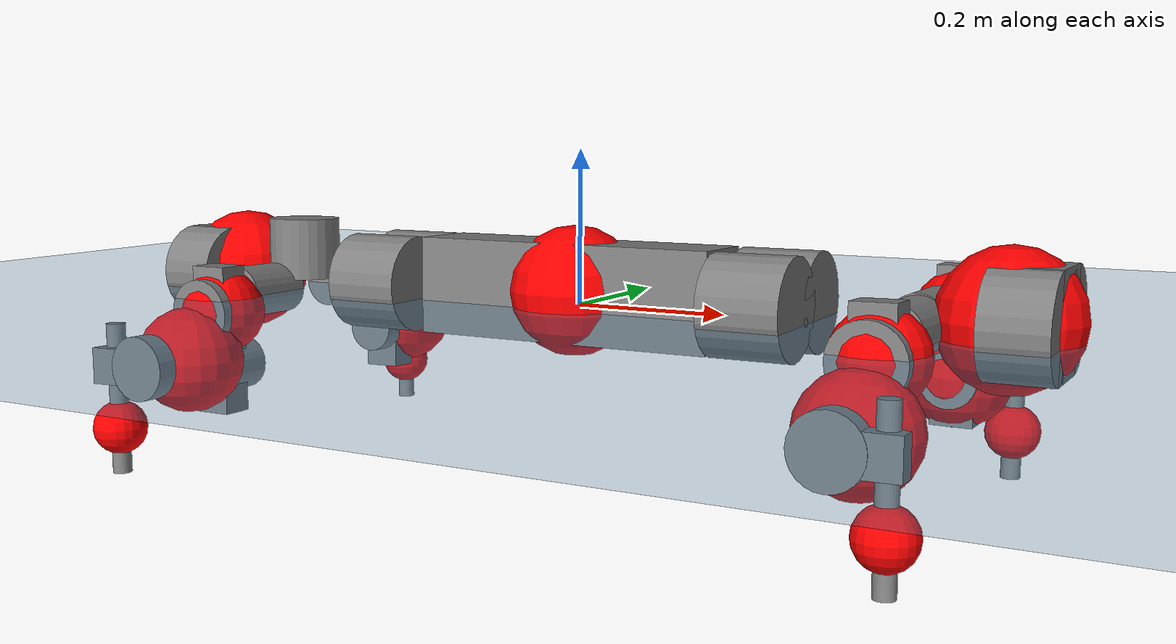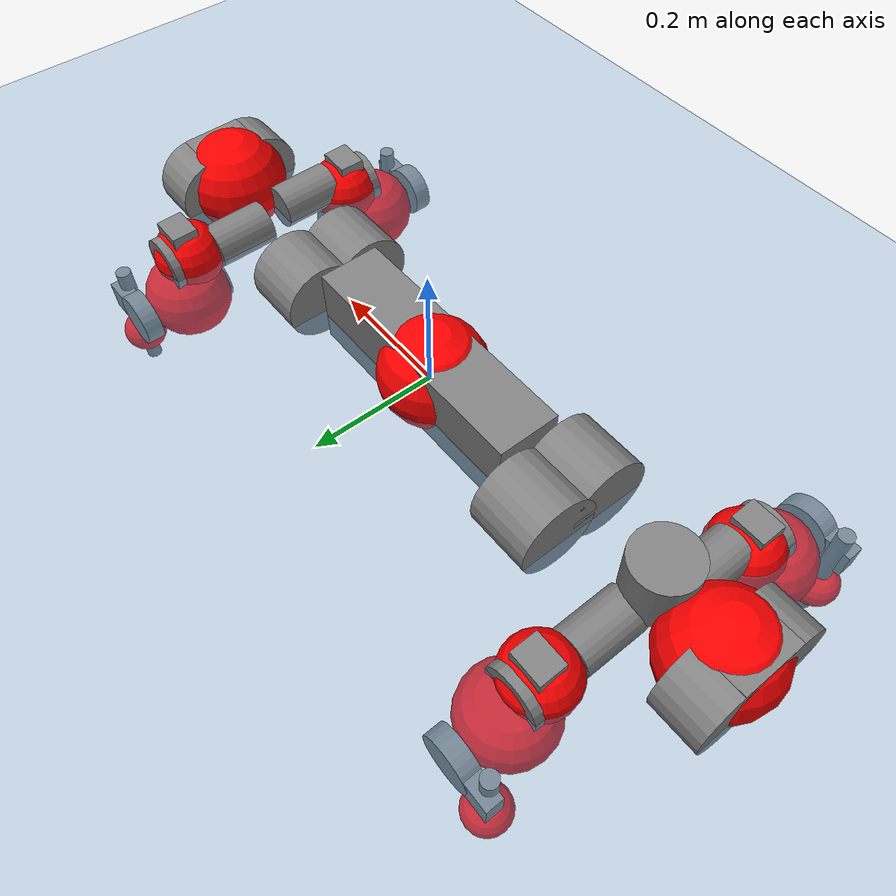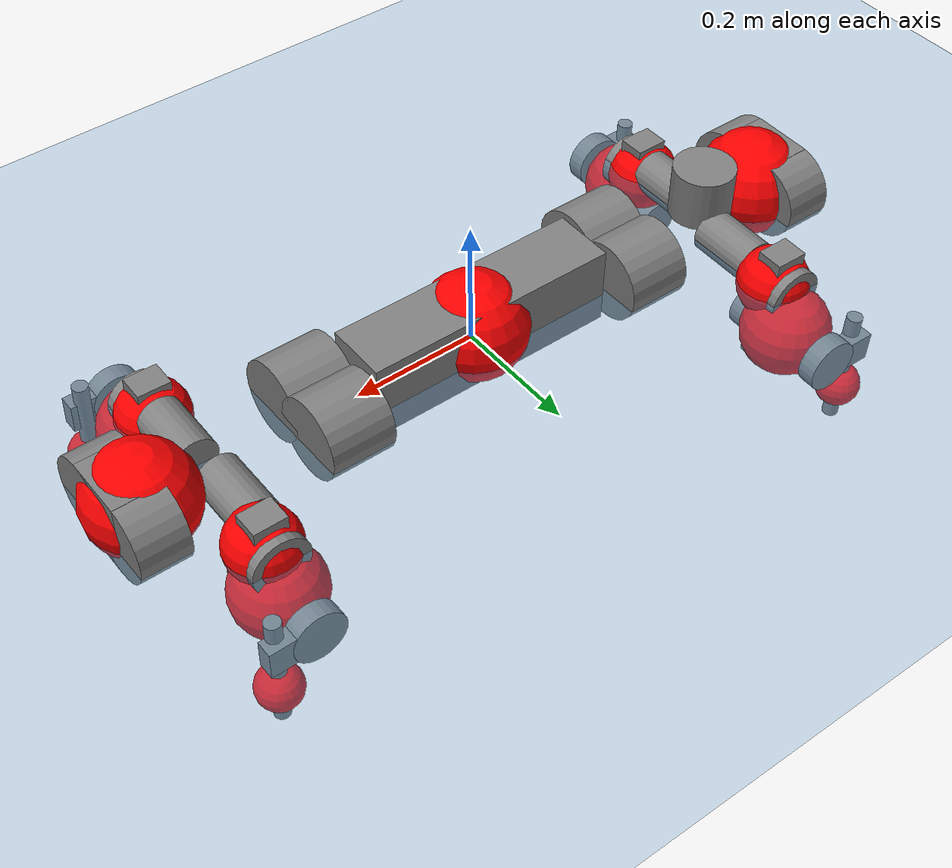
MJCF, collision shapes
<mujoco model="anymal_c">
  <compiler angle="radian" assetdir="assets" balanceinertia="true" inertiafromgeom="false"/>

  <option timestep="0.005" density="1.2" viscosity="2e-05"/>

  <size nkey="1"/>

  <visual>
    <quality shadowsize="8192"/>
    <map shadowclip="0.5"/>
  </visual>

  <default>
    <default class="/">
      <material specular="0" shininess="0.25"/>
      <geom contype="0" conaffinity="0" group="1" solref="-1000 -80"/>
      <site size="0.01 0.005 0.005" group="5"/>
      <general forcelimited="true" forcerange="-80 80" biastype="affine" gainprm="80" biasprm="0 -80 -2"/>
      <default class="anymal_c">
        <joint armature="0.01" damping="0.01" frictionloss="0.1"/>
        <default class="visual">
          <geom type="mesh" group="2"/>
          <default class="visual_zflip"/>
        </default>
        <default class="collision">
          <geom type="cylinder" group="3"/>
          <default class="foot">
            <geom size="0.03 0 0" type="sphere" condim="6" priority="1" friction="0.8 0.02 0.01" solimp="0.015 1 0.03"/>
          </default>
        </default>
      </default>
      <default class="reward_collision_sphere">
        <geom group="5" rgba="1 0 0 1"/>
      </default>
    </default>
  </default>

  <asset>
    <texture type="skybox" colorspace="auto" name="//unnamed_texture_0" builtin="gradient" rgb1="0.95 0.95 0.95" rgb2="0.95 0.95 0.95" width="100" height="600"/>
    <texture type="2d" colorspace="auto" name="texplane" builtin="checker" rgb1="0.345 0.575 0.748" rgb2="0.345 0.575 0.748" markrgb="1 1 1" width="512" height="512"/>
    <texture type="2d" colorspace="linear" name="base" file="base.png"/>
    <texture type="2d" colorspace="linear" name="top_shell" file="top_shell.png"/>
    <texture type="2d" colorspace="linear" name="bottom_shell" file="bottom_shell.png"/>
    <texture type="2d" colorspace="linear" name="remote" file="remote.png"/>
    <texture type="2d" colorspace="linear" name="hatch" file="hatch.png"/>
    <texture type="2d" colorspace="linear" name="handle" file="handle.png"/>
    <texture type="2d" colorspace="linear" name="face" file="face.png"/>
    <texture type="2d" colorspace="linear" name="battery" file="battery.png"/>
    <texture type="2d" colorspace="linear" name="lidar_cage" file="lidar_cage.png"/>
    <texture type="2d" colorspace="linear" name="depth_camera" file="depth_camera.png"/>
    <texture type="2d" colorspace="linear" name="wide_angle_camera" file="wide_angle_camera.png"/>
    <texture type="2d" colorspace="linear" name="lidar" file="lidar.png"/>
    <texture type="2d" colorspace="linear" name="drive" file="drive.png"/>
    <texture type="2d" colorspace="linear" name="hip_l" file="hip_l.png"/>
    <texture type="2d" colorspace="linear" name="shank_l" file="shank_l.png"/>
    <texture type="2d" colorspace="linear" name="foot" file="foot.png"/>
    <texture type="2d" colorspace="linear" name="thigh" file="thigh.png"/>
    <texture type="2d" colorspace="linear" name="shank_r" file="shank_r.png"/>
    <texture type="2d" colorspace="linear" name="hip_r" file="hip_r.png"/>
    <material name="MatPlane" class="/" texture="texplane" texuniform="true" texrepeat="2 2" specular="0.9" shininess="0.5"/>
    <material name="black_plastic" class="/" rgba="0.007 0.007 0.007 1"/>
    <material name="green" class="/" rgba="0.052 0.178 0.033 1"/>
    <material name="red" class="/" rgba="0.178 0.006 0.005 1"/>
    <material name="yellow" class="/" rgba="0.178 0.119 0.006 1"/>
    <material name="lwl" class="/" rgba="0.8 0.8 0.8 1"/>
    <material name="base" class="/" texture="base"/>
    <material name="top_shell" class="/" texture="top_shell"/>
    <material name="bottom_shell" class="/" texture="bottom_shell"/>
    <material name="hip_l" class="/" texture="hip_l"/>
    <material name="thigh" class="/" texture="thigh"/>
    <material name="shank_l" class="/" texture="shank_l"/>
    <material name="foot" class="/" texture="foot"/>
    <material name="hip_r" class="/" texture="hip_r"/>
    <material name="shank" class="/" texture="shank_r"/>
    <material name="hatch" class="/" texture="hatch"/>
    <material name="remote" class="/" texture="remote"/>
    <material name="handle" class="/" texture="handle"/>
    <material name="face" class="/" texture="face"/>
    <material name="depth_camera" class="/" texture="depth_camera"/>
    <material name="wide_angle_camera" class="/" texture="wide_angle_camera"/>
    <material name="battery" class="/" texture="battery"/>
    <material name="lidar_cage" class="/" texture="lidar_cage"/>
    <material name="lidar" class="/" texture="lidar"/>
    <material name="drive" class="/" texture="drive"/>
    <mesh name="base_0" class="/" file="base_0.obj"/>
    <mesh name="base_1" class="/" file="base_1.obj"/>
    <mesh name="base_2" class="/" file="base_2.obj"/>
    <mesh name="base_3" class="/" file="base_3.obj"/>
    <mesh name="base_4" class="/" file="base_4.obj"/>
    <mesh name="base_5" class="/" file="base_5.obj"/>
    <mesh name="top_shell" class="/" file="top_shell.obj"/>
    <mesh name="bottom_shell" class="/" file="bottom_shell.obj"/>
    <mesh name="remote" class="/" file="remote.obj"/>
    <mesh name="handle" class="/" file="handle.obj"/>
    <mesh name="face" class="/" file="face.obj"/>
    <mesh name="wide_angle_camera" class="/" file="wide_angle_camera.obj"/>
    <mesh name="depth_camera" class="/" file="depth_camera.obj"/>
    <mesh name="battery" class="/" file="battery.obj"/>
    <mesh name="lidar_cage" class="/" file="lidar_cage.obj"/>
    <mesh name="lidar" class="/" file="lidar.obj"/>
    <mesh name="drive" class="/" file="drive.obj"/>
    <mesh name="hip_l" class="/" file="hip_l.obj"/>
    <mesh name="thigh" class="/" file="thigh.obj"/>
    <mesh name="shank_l" class="/" file="shank_l.obj"/>
    <mesh name="foot" class="/" file="foot.obj"/>
    <mesh name="hip_r" class="/" file="hip_r.obj"/>
    <mesh name="hatch" class="/" file="hatch.obj"/>
    <mesh name="shank_r" class="/" file="shank_r.obj"/>
  </asset>

  <worldbody>
    <geom name="floor" class="/" size="100 100 0.125" type="plane" group="0" material="MatPlane"/>
    <light name="toplight_shadow" class="/" pos="0 0 5" dir="0.0990148 0.0990148 -0.990148" type="directional" ambient="0.04 0.04 0.04" diffuse="0.55 0.55 0.55" specular="0.12 0.12 0.12"/>
    <light name="toplight_fill" class="/" pos="0 0 5" dir="0.0990148 0.0990148 -0.990148" type="directional" castshadow="false" ambient="0.04 0.04 0.04" diffuse="0.3 0.3 0.3" specular="0.08 0.08 0.08"/>
    <body name="trunk" childclass="anymal_c" pos="-0.0062276 -0.00278805 0.0186425" quat="0.999961 -0.00876877 -0.000660084 -0.000547395">
      <inertial pos="-0.00234775 -0.0157802 0.0184972" quat="0.459158 0.571051 0.480198 0.482168" mass="6.04045" diaginertia="1.40433 0.0520649 0.000205592"/>
      <joint name="//unnamed_joint_0" type="free" armature="0" damping="0" frictionloss="0"/>
      <geom name="//unnamed_geom_1" class="visual" material="green" mesh="base_0"/>
      <geom name="//unnamed_geom_2" class="visual" material="yellow" mesh="base_1"/>
      <geom name="//unnamed_geom_3" class="visual" material="red" mesh="base_2"/>
      <geom name="//unnamed_geom_4" class="visual" material="black_plastic" mesh="base_3"/>
      <geom name="//unnamed_geom_5" class="visual" material="lwl" mesh="base_4"/>
      <geom name="//unnamed_geom_6" class="visual" material="base" mesh="base_5"/>
      <geom name="trunk_1" class="collision" size="0.204581 0.0493816 0.0634907" type="box"/>
      <geom name="trunk_2" class="collision" size="0.0634907 0.0511452" pos="0.265163 0.0442161 0" quat="0.707107 0 0.707107 0"/>
      <geom name="trunk_3" class="collision" size="0.0634907 0.0511452" pos="-0.265163 0.0442161 0" quat="0.707107 0 0.707107 0"/>
      <geom name="trunk_4" class="collision" size="0.0634907 0.0511452" pos="0.265163 -0.0442161 0" quat="0.707107 0 0.707107 0"/>
      <geom name="trunk_5" class="collision" size="0.0634907 0.0511452" pos="-0.265163 -0.0442161 0" quat="0.707107 0 0.707107 0"/>
      <geom name="//unnamed_geom_12" class="visual" material="top_shell" mesh="top_shell"/>
      <geom name="//unnamed_geom_13" class="visual" material="bottom_shell" mesh="bottom_shell"/>
      <geom name="//unnamed_geom_14" class="visual" material="remote" mesh="remote"/>
      <geom name="//unnamed_geom_15" class="visual" material="handle" mesh="handle"/>
      <geom name="//unnamed_geom_16" class="visual" pos="0.505333 0 0" quat="1 0 0 0" material="face" mesh="face"/>
      <geom name="trunk_6" class="collision" size="0.0387998 0.0493816 0.0634907" pos="0.572386 0 0" type="box"/>
      <geom name="//unnamed_geom_18" class="collision" size="0.0634907 0.0387998" pos="0.572386 0.0442161 0" quat="0.707107 0 0.707107 0"/>
      <geom name="//unnamed_geom_19" class="collision" size="0.0634907 0.0387998" pos="0.572386 -0.0442161 0" quat="0.707107 0 0.707107 0"/>
      <geom name="//unnamed_geom_20" class="visual" pos="0.562776 0 -0.000507069" quat="0.965926 0 0.258819 0" material="depth_camera" mesh="depth_camera"/>
      <geom name="//unnamed_geom_21" class="visual" pos="0.625418 0 0.0039754" material="wide_angle_camera" mesh="wide_angle_camera"/>
      <geom name="//unnamed_geom_22" class="visual_zflip" pos="-0.505333 0 0" quat="0 0 0 1" material="face" mesh="face"/>
      <geom name="trunk_7" class="collision" size="0.0387998 0.0493816 0.0634907" pos="-0.572386 0 0" quat="0 0 0 1" type="box"/>
      <geom name="//unnamed_geom_24" class="collision" size="0.0634907 0.0387998" pos="-0.572386 -0.0442161 0" quat="0 -0.707107 0 0.707107"/>
      <geom name="//unnamed_geom_25" class="collision" size="0.0634907 0.0387998" pos="-0.572386 0.0442161 0" quat="0 -0.707107 0 0.707107"/>
      <geom name="//unnamed_geom_26" class="visual" pos="-0.562776 0 -0.000507069" quat="0 -0.258819 0 0.965926" material="depth_camera" mesh="depth_camera"/>
      <geom name="//unnamed_geom_27" class="visual_zflip" pos="-0.625418 0 0.0039754" quat="0 0 0 1" material="wide_angle_camera" mesh="wide_angle_camera"/>
      <geom name="//unnamed_geom_28" class="visual" material="battery" mesh="battery"/>
      <geom name="//unnamed_geom_29" class="visual" pos="0 0.0405481 0.0149617" quat="0.683013 -0.183013 0.183013 0.683013" material="depth_camera" mesh="depth_camera"/>
      <geom name="//unnamed_geom_30" class="visual" pos="0 -0.0405481 0.0149617" quat="0.683013 0.183013 0.183013 -0.683013" material="depth_camera" mesh="depth_camera"/>
      <geom name="//unnamed_geom_31" class="visual" pos="-0.443766 0 0.0195185" quat="1 0 0 0" material="lidar_cage" mesh="lidar_cage"/>
      <geom name="trunk_8" class="collision" size="0.0493816 0.0423271" pos="-0.443766 0 0.0354519"/>
      <geom name="//unnamed_geom_33" class="visual" pos="-0.443766 -0.000230805 0.0377623" quat="0.707107 0 0 -0.707107" material="lidar" mesh="lidar"/>
      <geom name="//unnamed_geom_34" class="visual" pos="0.36562 0.0655624 6.31528e-09" quat="0.258819 0.965926 0 0" material="drive" mesh="drive"/>
      <geom name="//unnamed_geom_35" class="visual" pos="0.36562 -0.0655624 -6.31528e-09" quat="0.258819 -0.965926 0 0" material="drive" mesh="drive"/>
      <geom name="//unnamed_geom_36" class="visual" pos="-0.36562 0.0655624 -6.31528e-09" quat="0 0 0.965926 -0.258819" material="drive" mesh="drive"/>
      <geom name="//unnamed_geom_37" class="visual" pos="-0.36562 -0.0655624 6.31528e-09" quat="0 0 -0.965926 -0.258819" material="drive" mesh="drive"/>
      <geom name="//unnamed_geom_38" class="visual" pos="0.14142 0 0.0193857" quat="1 0 0 0" material="hatch" mesh="hatch"/>
      <geom name="//unnamed_geom_39" class="reward_collision_sphere" size="0.0846542"/>
      <geom name="//unnamed_geom_40" class="reward_collision_sphere" size="0.0846542" pos="0.548612 0 0"/>
      <geom name="//unnamed_geom_41" class="reward_collision_sphere" size="0.0846542" pos="-0.548612 0 0"/>
      <site name="imu" pos="0.26651 -0.0581832 0.0883096" size="0.00705452"/>
      <camera name="track" pos="0 -1.26332 0" quat="0.707107 0.707107 0 0" mode="trackcom"/>
      <camera name="ego_camera" pos="0.548612 0 -0.0106223" quat="-0.5 -0.5 0.5 0.5"/>
      <body name="LF_HIP" pos="0.368109 0.0560471 -0.010333" quat="0.259794 0.965662 -0.000127226 -0.00215606">
        <inertial pos="0.0861633 -0.0120455 0.0159801" quat="-0.210837 0.724517 -0.123291 0.644533" mass="1.15268" diaginertia="0.0149167 0.000635436 5.09054e-06"/>
        <joint name="LF_HAA" pos="0 0 0" axis="0.996636 -0.076696 0.0288968" stiffness="0.07259" range="-0.656993 0.247788" armature="0.00689058" damping="0.0815094" frictionloss="0.028122"/>
        <geom name="//unnamed_geom_42" class="visual" pos="0 0.0003715 -6.10185e-05" quat="0.258819 -0.965926 0 0" material="hip_l" mesh="hip_l"/>
        <geom name="//unnamed_geom_43" class="visual" pos="0.0730264 -0.0806219 -0.0438392" quat="0.183013 -0.683013 0.683013 0.183013" material="drive" mesh="drive"/>
        <geom name="//unnamed_geom_44" class="collision" size="0.0352726 0.0493816" pos="0.0730264 -0.00755451 -0.00183368" quat="-0.353553 -0.612372 0.612372 -0.353553"/>
        <body name="LF_THIGH" pos="0.0885511 -0.056812 -0.026146" quat="0.182763 -0.683043 0.683403 0.181687">
          <inertial pos="0.0375632 -0.00296148 -0.0604379" quat="0.988497 -0.0317314 -0.0838415 0.121805" mass="1.17041" diaginertia="0.0889572 0.00360079 7.96547e-06"/>
          <joint name="LF_HFE" pos="0 0 0" axis="0.999925 -0.00617648 0.0106135" stiffness="0.0128826" range="-2.89349 3.13108" armature="0.0114326" damping="0" frictionloss="0.072265"/>
          <geom name="//unnamed_geom_45" class="visual" pos="0.0116885 1.84184e-05 0" quat="0.707107 0 0 -0.707107" material="thigh" mesh="thigh"/>
          <geom name="//unnamed_geom_46" class="collision" size="0.0458544 0.0282181" pos="0.0487655 0 0" quat="0.5 0.5 -0.5 -0.5"/>
          <geom name="//unnamed_geom_47" class="collision" size="0.0264544 0.0211636 0.0996902" pos="0.0365742 0 -0.037527" quat="0.707107 0 0 -0.707107" type="box"/>
          <geom name="//unnamed_geom_48" class="visual" pos="0.12228 0 -0.0756839" quat="1 0 0 0" material="drive" mesh="drive"/>
          <geom name="//unnamed_geom_49" class="collision" size="0.0352726 0.0493816" pos="0.0369399 0 -0.0756839" quat="0.707107 0 0.707107 0"/>
          <geom name="//unnamed_geom_50" class="reward_collision_sphere" size="0.0564361" pos="0.0304785 0 0"/>
          <body name="LF_SHANK" pos="0.113813 0.00344492 -0.0735203" quat="1 9.21079e-05 -0.000191981 -6.62767e-05">
            <inertial pos="0.0264628 -0.0207331 -0.023018" quat="0.989989 -0.138278 0.00140024 -0.028256" mass="0.209183" diaginertia="0.0350893 0.000908941 1.61268e-06"/>
            <joint name="LF_KFE" pos="0 0 0" axis="0.999877 0.00911802 0.0127398" range="-2.74904 2.88635" armature="0.010766" damping="0.0453043" frictionloss="0.0033795"/>
            <geom name="//unnamed_geom_51" class="visual" pos="0.00381138 0.0203225 0" quat="0.707107 0 0 -0.707107" material="shank_l" mesh="shank_l"/>
            <geom name="LF_kfe_act" class="collision" size="0.0423271 0.014109" pos="0.0243828 0 0" quat="0.5 0.5 -0.5 -0.5"/>
            <geom name="//unnamed_geom_53" class="collision" size="0.0405628 0.023809 0.0134036" pos="0.0243828 -0.0363197 0" quat="0.5 0.5 -0.5 -0.5" type="box"/>
            <geom name="//unnamed_geom_54" class="visual" pos="0.0159088 -0.0490053 -0.0897505" quat="0.382683 0 0 -0.92388" material="foot" mesh="foot"/>
            <geom name="LF_calf" class="collision" size="0.0123454 0.0996465" pos="0.0159098 -0.0555544 -0.0448753" quat="0.707107 0 0 -0.707107"/>
            <geom name="LF_foot" class="foot" size="0.0310787" pos="0.0159098 -0.0555544 -0.0837755" quat="0.707107 0 0 -0.707107"/>
            <geom name="//unnamed_geom_57" class="reward_collision_sphere" size="0.0705452" pos="-0.0609569 0 0"/>
            <geom name="//unnamed_geom_58" class="reward_collision_sphere" size="0.0352726" pos="0.0159098 -0.0555544 -0.0837755"/>
            <site name="LF_foot" class="foot" pos="0.0159098 -0.0555544 -0.0837755" quat="0.707107 0 0 -0.707107" size="0.00705452"/>
          </body>
        </body>
      </body>
      <body name="RF_HIP" pos="0.378008 -0.0632735 -0.00846315" quat="0.252549 -0.967559 0.00411373 -0.00564864">
        <inertial pos="0.0795115 0.0095575 -0.00103107" quat="0.097696 0.616573 0.141887 0.76822" mass="0.831695" diaginertia="0.0160241 0.000577574 4.4519e-06"/>
        <joint name="RF_HAA" pos="0 0 0" axis="0.998129 -0.0294382 0.0535816" stiffness="0.0797648" range="-0.119585 0.960734" armature="0.00451509" damping="0.0754604" frictionloss="0.0230446"/>
        <geom name="//unnamed_geom_59" class="visual" pos="0 -0.000371497 -6.10183e-05" quat="0.258819 0.965926 0 0" material="hip_r" mesh="hip_r"/>
        <geom name="//unnamed_geom_60" class="visual" pos="0.0730264 0.0806219 -0.0438392" quat="0.183013 0.683013 0.683013 -0.183013" material="drive" mesh="drive"/>
        <geom name="//unnamed_geom_61" class="collision" size="0.0352726 0.0493816" pos="0.0730264 0.00755451 -0.00183368" quat="-0.353553 0.612372 0.612372 0.353553"/>
        <body name="RF_THIGH" pos="0.0695423 0.0585716 -0.00606793" quat="0.178309 0.682056 0.684623 -0.185197">
          <inertial pos="0.0489988 -0.00338439 -0.0558671" quat="0.993081 0.0354469 -0.0643296 0.0916242" mass="0.894715" diaginertia="0.0787375 0.00367092 4.87653e-06"/>
          <joint name="RF_HFE" pos="0 0 0" axis="0.999986 -0.00395372 0.0033844" range="-3.15499 3.39083" armature="0.0114784" damping="0.0995448" frictionloss="0.124643"/>
          <geom name="//unnamed_geom_62" class="visual" pos="0.0116885 1.84184e-05 0" quat="0.707107 0 0 -0.707107" material="thigh" mesh="thigh"/>
          <geom name="//unnamed_geom_63" class="collision" size="0.0458544 0.0282181" pos="0.0487655 0 0" quat="0.5 0.5 0.5 0.5"/>
          <geom name="//unnamed_geom_64" class="collision" size="0.0264544 0.0211636 0.0996902" pos="0.0365742 0 -0.037527" quat="0.707107 0 0 0.707107" type="box"/>
          <geom name="//unnamed_geom_65" class="visual" pos="0.12228 0 -0.0756839" quat="1 0 0 0" material="drive" mesh="drive"/>
          <geom name="//unnamed_geom_66" class="collision" size="0.0352726 0.0493816" pos="0.0369399 0 -0.0756839" quat="0.707107 0 0.707107 0"/>
          <geom name="//unnamed_geom_67" class="reward_collision_sphere" size="0.0564361" pos="0.0304785 0 0"/>
          <body name="RF_SHANK" pos="0.140643 -0.00522382 -0.0735795" quat="0.999993 -0.00218441 0.00240962 0.00200904">
            <inertial pos="0.0151047 0.0559733 -0.0368225" quat="0.980655 0.182142 0.0683105 0.0217775" mass="0.272977" diaginertia="0.03538 0.000895818 2.09908e-06"/>
            <joint name="RF_KFE" pos="0 0 0" axis="0.999989 0.00055799 -0.00465359" stiffness="0.0392309" range="-3.05772 3.2641" armature="0.00884541" damping="0.0738699" frictionloss="0.111353"/>
            <geom name="//unnamed_geom_68" class="visual" pos="0.00381136 -0.0203224 0" quat="0.707107 0 0 0.707107" material="shank" mesh="shank_r"/>
            <geom name="RF_kfe_act" class="collision" size="0.0423271 0.014109" pos="0.0243828 0 0" quat="0.5 0.5 0.5 0.5"/>
            <geom name="//unnamed_geom_70" class="collision" size="0.0405628 0.023809 0.0134036" pos="0.0243828 0.0363197 0" quat="0.5 0.5 0.5 0.5" type="box"/>
            <geom name="//unnamed_geom_71" class="visual" pos="0.0159107 0.0490053 -0.0897505" quat="0.382683 0 0 0.92388" material="foot" mesh="foot"/>
            <geom name="RF_calf" class="collision" size="0.0123454 0.0996465" pos="0.0159098 0.0555544 -0.0448753" quat="0.707107 0 0 0.707107"/>
            <geom name="RF_foot" class="foot" size="0.034678" pos="0.0159098 0.0555544 -0.0837755" quat="0.707107 0 0 0.707107"/>
            <geom name="//unnamed_geom_74" class="reward_collision_sphere" size="0.0705452" pos="-0.0609569 0 0"/>
            <geom name="//unnamed_geom_75" class="reward_collision_sphere" size="0.0352726" pos="0.0159098 0.0555544 -0.0837755"/>
            <site name="RF_foot" class="foot" pos="0.0159098 0.0555544 -0.0837755" quat="0.707107 0 0 0.707107" size="0.00705452"/>
          </body>
        </body>
      </body>
      <body name="LH_HIP" pos="-0.361863 0.0796242 -0.0141811" quat="0.000825689 0.00117695 0.964784 -0.26304">
        <inertial pos="0.0783629 0.0267575 0.0165135" quat="0.123594 0.678205 0.177625 0.70229" mass="1.21374" diaginertia="0.0208952 0.00049827 5.97944e-06"/>
        <joint name="LH_HAA" pos="0 0 0" axis="0.996622 0.0483889 0.0663495" range="-0.159047 0.372216" armature="0.0014907" damping="0" frictionloss="0.0785739"/>
        <geom name="//unnamed_geom_76" class="visual" pos="0 -0.000371497 -6.10183e-05" quat="-0.258819 -0.965926 0 0" material="hip_r" mesh="hip_r"/>
        <geom name="//unnamed_geom_77" class="visual" pos="0.0730264 0.0806219 -0.0438392" quat="0.183013 0.683013 0.683013 -0.183013" material="drive" mesh="drive"/>
        <geom name="//unnamed_geom_78" class="collision" size="0.0352726 0.0493816" pos="0.0730264 0.00755451 -0.00183368" quat="-0.353553 0.612372 0.612372 0.353553"/>
        <body name="LH_THIGH" pos="0.0692868 0.0622452 -0.0294055" quat="0.183662 0.683002 0.684696 -0.175978">
          <inertial pos="0.0181556 0.014575 -0.0459986" quat="0.992475 -0.00486983 -0.0826998 0.0901739" mass="0.85683" diaginertia="0.0477041 0.00207353 3.42624e-06"/>
          <joint name="LH_HFE" pos="0 0 0" axis="0.995358 0.00791091 0.0959137" range="-2.87201 3.04545" armature="0.00460244" damping="0.103577" frictionloss="0.0313945"/>
          <geom name="//unnamed_geom_79" class="visual" pos="0.0116885 1.84184e-05 0" quat="0.707107 0 0 -0.707107" material="thigh" mesh="thigh"/>
          <geom name="//unnamed_geom_80" class="collision" size="0.0458544 0.0282181" pos="0.0487655 0 0" quat="0.5 0.5 -0.5 -0.5"/>
          <geom name="//unnamed_geom_81" class="collision" size="0.0264544 0.0211636 0.0996902" pos="0.0365742 0 -0.037527" quat="0.707107 0 0 -0.707107" type="box"/>
          <geom name="//unnamed_geom_82" class="visual" pos="0.12228 0 -0.0756839" quat="1 0 0 0" material="drive" mesh="drive"/>
          <geom name="//unnamed_geom_83" class="collision" size="0.0352726 0.0493816" pos="0.0369399 0 -0.0756839" quat="0.707107 0 0.707107 0"/>
          <geom name="//unnamed_geom_84" class="reward_collision_sphere" size="0.0564361" pos="0.0304785 0 0"/>
          <body name="LH_SHANK" pos="0.135188 -0.00338464 -0.0624918" quat="0.999971 -0.00755128 -0.000148959 -0.00105494">
            <inertial pos="0.0249473 0.0246414 -0.00251467" quat="0.981811 0.169203 0.0441609 0.0739367" mass="0.229335" diaginertia="0.0314631 0.00125723 1.50768e-06"/>
            <joint name="LH_KFE" pos="0 0 0" axis="0.999898 -0.0139011 0.00326188" stiffness="0.0349597" range="-3.27956 3.53522" armature="0.00146339" damping="0.0963857" frictionloss="0.0786858"/>
            <geom name="//unnamed_geom_85" class="visual" pos="0.00381136 -0.0203224 0" quat="-0.707107 0 0 -0.707107" material="shank" mesh="shank_r"/>
            <geom name="LH_kfe_act" class="collision" size="0.0423271 0.014109" pos="0.0243828 0 0" quat="0.5 0.5 -0.5 -0.5"/>
            <geom name="//unnamed_geom_87" class="collision" size="0.0405628 0.023809 0.0134036" pos="0.0243828 0.0363197 0" quat="0.5 0.5 -0.5 -0.5" type="box"/>
            <geom name="//unnamed_geom_88" class="visual" pos="0.0159107 0.0490053 -0.0897505" quat="-0.382683 0 0 -0.92388" material="foot" mesh="foot"/>
            <geom name="LH_calf" class="collision" size="0.0123454 0.0996465" pos="0.0159098 0.0555544 -0.0448753" quat="0.707107 0 0 -0.707107"/>
            <geom name="LH_foot" class="foot" size="0.0131366" pos="0.0159098 0.0555544 -0.0837755" quat="0.707107 0 0 -0.707107"/>
            <geom name="//unnamed_geom_91" class="reward_collision_sphere" size="0.0705452" pos="-0.0609569 0 0"/>
            <geom name="//unnamed_geom_92" class="reward_collision_sphere" size="0.0352726" pos="0.0159098 0.0555544 -0.0837755"/>
            <site name="LH_foot" class="foot" pos="0.0159098 0.0555544 -0.0837755" quat="0.707107 0 0 -0.707107" size="0.00705452"/>
          </body>
        </body>
      </body>
      <body name="RH_HIP" pos="-0.385222 -0.0710907 -0.0168548" quat="0.000115088 0.000125169 -0.965892 -0.258945">
        <inertial pos="0.0846746 0.00323436 -0.00300404" quat="-0.101985 0.738024 -0.200085 0.636307" mass="0.934772" diaginertia="0.00938659 0.000361162 2.83018e-06"/>
        <joint name="RH_HAA" pos="0 0 0" axis="0.995131 -0.0591455 -0.0788383" range="-0.495048 0.478428" armature="0.00685631" damping="0.00647704" frictionloss="0.00171556"/>
        <geom name="//unnamed_geom_93" class="visual" pos="0 0.0003715 -6.10185e-05" quat="-0.258819 0.965926 0 0" material="hip_l" mesh="hip_l"/>
        <geom name="//unnamed_geom_94" class="visual" pos="0.0730264 -0.0806219 -0.0438392" quat="-0.183013 0.683013 -0.683013 -0.183013" material="drive" mesh="drive"/>
        <geom name="//unnamed_geom_95" class="collision" size="0.0352726 0.0493816" pos="0.0730264 -0.00755451 -0.00183368" quat="0.353553 0.612372 -0.612372 0.353553"/>
        <body name="RH_THIGH" pos="0.079131 -0.0548928 -0.00302211" quat="-0.181744 0.683557 -0.683536 -0.180271">
          <inertial pos="0.0268623 0.0121046 -0.0483052" quat="0.985007 0.00474176 -0.147495 0.0893478" mass="1.49093" diaginertia="0.072239 0.00348587 5.54101e-06"/>
          <joint name="RH_HFE" pos="0 0 0" axis="0.998514 -0.0544561 0.00225607" range="-3.2019 3.44202" armature="0.00669819" damping="0.0506936" frictionloss="0.1006"/>
          <geom name="//unnamed_geom_96" class="visual" pos="0.0116885 1.84184e-05 0" quat="0.707107 0 0 -0.707107" material="thigh" mesh="thigh"/>
          <geom name="//unnamed_geom_97" class="collision" size="0.0458544 0.0282181" pos="0.0487655 0 0" quat="0.5 0.5 0.5 0.5"/>
          <geom name="//unnamed_geom_98" class="collision" size="0.0264544 0.0211636 0.0996902" pos="0.0365742 0 -0.037527" quat="0.707107 0 0 0.707107" type="box"/>
          <geom name="//unnamed_geom_99" class="visual" pos="0.12228 0 -0.0756839" quat="1 0 0 0" material="drive" mesh="drive"/>
          <geom name="//unnamed_geom_100" class="collision" size="0.0352726 0.0493816" pos="0.0369399 0 -0.0756839" quat="0.707107 0 0.707107 0"/>
          <geom name="//unnamed_geom_101" class="reward_collision_sphere" size="0.0564361" pos="0.0304785 0 0"/>
          <body name="RH_SHANK" pos="0.140032 -0.0149273 -0.0610928" quat="0.999951 0.00904717 -0.00361464 0.00174848">
            <inertial pos="-0.00269585 -0.0371335 -0.0237097" quat="0.986143 -0.133592 -0.0785653 -0.0591874" mass="0.189136" diaginertia="0.0249058 0.000661391 1.51223e-06"/>
            <joint name="RH_KFE" pos="0 0 0" axis="0.995429 -0.061096 0.0734093" stiffness="0.0887356" range="-3.47055 3.30674" armature="0.00604285" damping="0.09327" frictionloss="0.101119"/>
            <geom name="//unnamed_geom_102" class="visual" pos="0.00381138 0.0203225 0" quat="0.707107 0 0 -0.707107" material="shank_l" mesh="shank_l"/>
            <geom name="RH_kfe_act" class="collision" size="0.0423271 0.014109" pos="0.0243828 0 0" quat="0.5 0.5 0.5 0.5"/>
            <geom name="//unnamed_geom_104" class="collision" size="0.0405628 0.023809 0.0134036" pos="0.0243828 -0.0363197 0" quat="0.5 0.5 0.5 0.5" type="box"/>
            <geom name="//unnamed_geom_105" class="visual" pos="0.0159088 -0.0490053 -0.0897505" quat="0.382683 0 0 -0.92388" material="foot" mesh="foot"/>
            <geom name="RH_calf" class="collision" size="0.0123454 0.0996465" pos="0.0159098 -0.0555544 -0.0448753" quat="0.707107 0 0 0.707107"/>
            <geom name="RH_foot" class="foot" size="0.0279767" pos="0.0159098 -0.0555544 -0.0837755" quat="0.707107 0 0 0.707107"/>
            <geom name="//unnamed_geom_108" class="reward_collision_sphere" size="0.0705452" pos="-0.0609569 0 0"/>
            <geom name="//unnamed_geom_109" class="reward_collision_sphere" size="0.0352726" pos="0.0159098 -0.0555544 -0.0837755"/>
            <site name="RH_foot" class="foot" pos="0.0159098 -0.0555544 -0.0837755" quat="0.707107 0 0 0.707107" size="0.00705452"/>
          </body>
        </body>
      </body>
    </body>
  </worldbody>

  <contact>
    <pair class="/" geom1="floor" geom2="LF_foot" name="//unnamed_contact_0"/>
    <pair class="/" geom1="floor" geom2="RF_foot" name="//unnamed_contact_1"/>
    <pair class="/" geom1="floor" geom2="LH_foot" name="//unnamed_contact_2"/>
    <pair class="/" geom1="floor" geom2="RH_foot" name="//unnamed_contact_3"/>
  </contact>

  <actuator>
    <general name="LF_HAA" class="/" joint="LF_HAA" forcerange="-64.044 64.044" gainprm="45.8598" biasprm="0 -45.8598 -1.71554"/>
    <general name="LF_HFE" class="/" joint="LF_HFE" forcerange="-41.1714 41.1714" gainprm="45.8598" biasprm="0 -45.8598 -1.71554"/>
    <general name="LF_KFE" class="/" joint="LF_KFE" forcerange="-29.9824 29.9824" gainprm="45.8598" biasprm="0 -45.8598 -1.71554"/>
    <general name="RF_HAA" class="/" joint="RF_HAA" forcerange="-71.0412 71.0412" gainprm="45.8598" biasprm="0 -45.8598 -1.71554"/>
    <general name="RF_HFE" class="/" joint="RF_HFE" forcerange="-30.6257 30.6257" gainprm="45.8598" biasprm="0 -45.8598 -1.71554"/>
    <general name="RF_KFE" class="/" joint="RF_KFE" forcerange="-63.0127 63.0127" gainprm="45.8598" biasprm="0 -45.8598 -1.71554"/>
    <general name="LH_HAA" class="/" joint="LH_HAA" forcerange="-65.0911 65.0911" gainprm="45.8598" biasprm="0 -45.8598 -1.71554"/>
    <general name="LH_HFE" class="/" joint="LH_HFE" forcerange="-95.5822 95.5822" gainprm="45.8598" biasprm="0 -45.8598 -1.71554"/>
    <general name="LH_KFE" class="/" joint="LH_KFE" forcerange="-20.2266 20.2266" gainprm="45.8598" biasprm="0 -45.8598 -1.71554"/>
    <general name="RH_HAA" class="/" joint="RH_HAA" forcerange="-56.4338 56.4338" gainprm="45.8598" biasprm="0 -45.8598 -1.71554"/>
    <general name="RH_HFE" class="/" joint="RH_HFE" forcerange="-77.1 77.1" gainprm="45.8598" biasprm="0 -45.8598 -1.71554"/>
    <general name="RH_KFE" class="/" joint="RH_KFE" forcerange="-29.112 29.112" gainprm="45.8598" biasprm="0 -45.8598 -1.71554"/>
  </actuator>

  <sensor>
    <gyro site="imu" name="imu_angular_velocity"/>
    <velocimeter site="imu" name="imu_linear_velocity"/>
    <framelinvel objtype="site" objname="LF_foot" name="LF_foot_global_linear_velocity"/>
    <framelinvel objtype="site" objname="RF_foot" name="RF_foot_global_linear_velocity"/>
    <framelinvel objtype="site" objname="LH_foot" name="LH_foot_global_linear_velocity"/>
    <framelinvel objtype="site" objname="RH_foot" name="RH_foot_global_linear_velocity"/>
  </sensor>

  <keyframe>
    <key name="home" qpos="0 0 0.55 1 0 0 0 0 0.4 -0.8 0 -0.4 0.8 0 -0.4 0.8 0 0.4 -0.8"/>
  </keyframe>
</mujoco>
